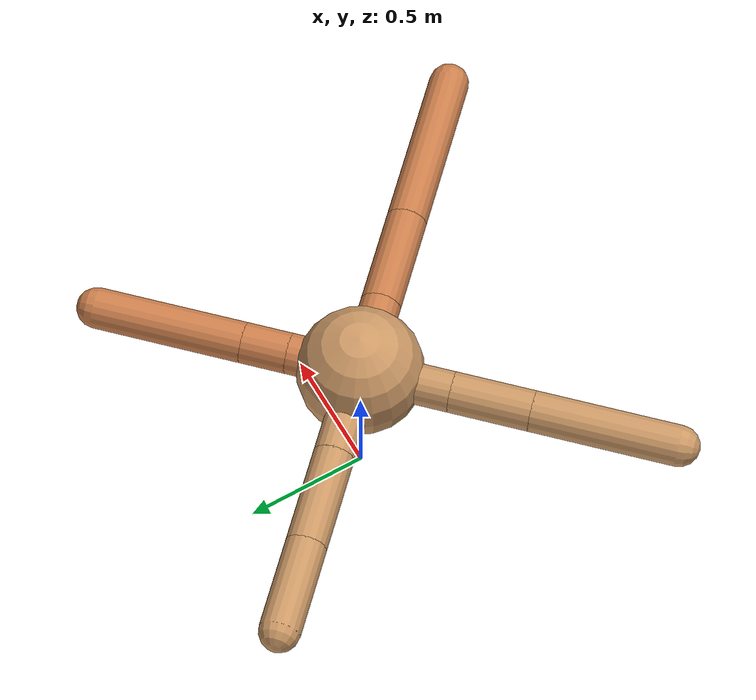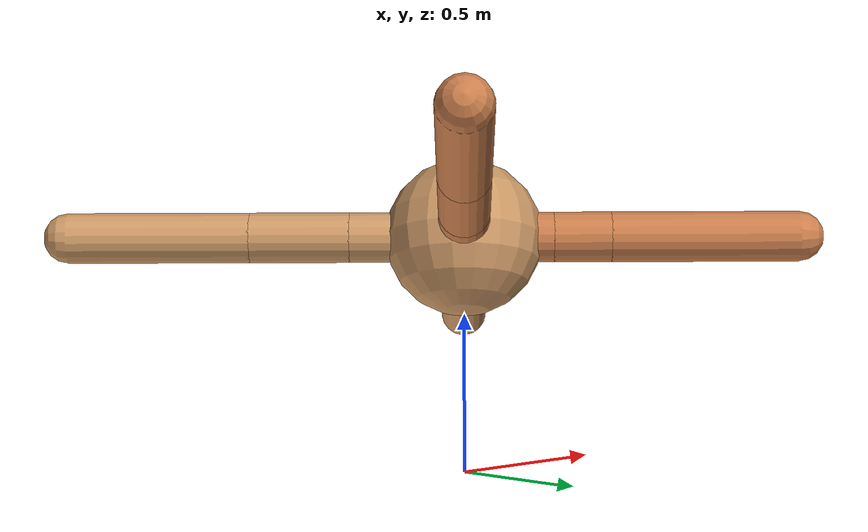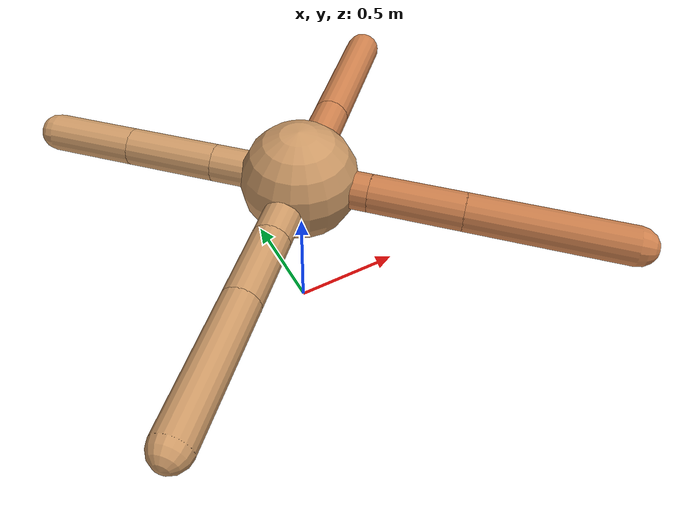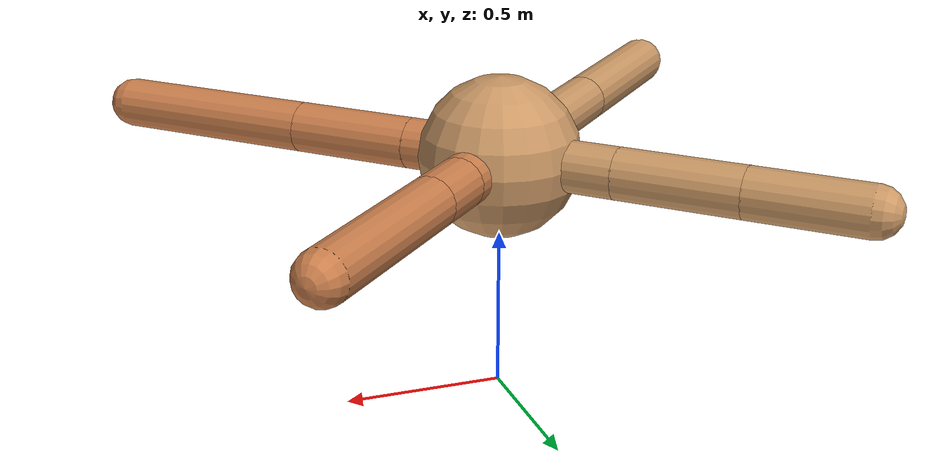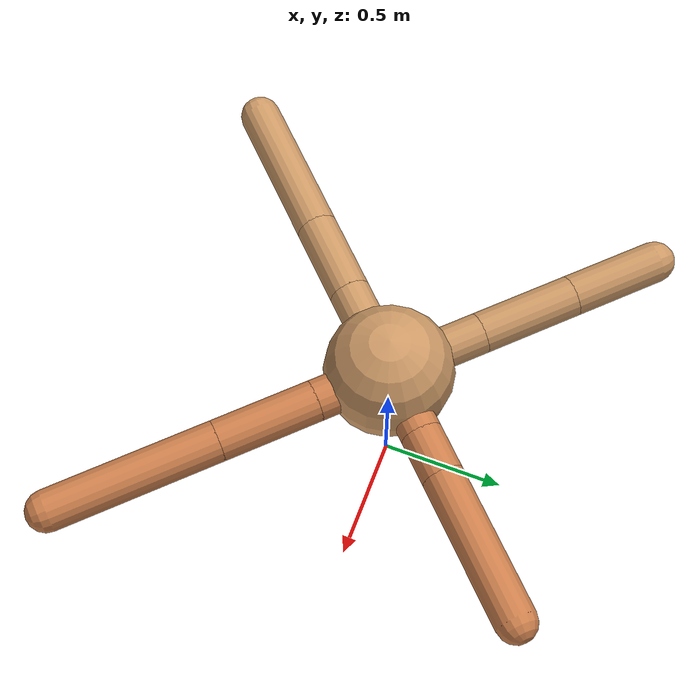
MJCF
<mujoco model="ant">
  <compiler angle="degree" coordinate="local" inertiafromgeom="true" />
  <option integrator="RK4" timestep="0.01" />
  <custom>
    <numeric data="0.0 0.0 0.55 1.0 0.0 0.0 0.0 0.0 1.0 0.0 -1.0 0.0 -1.0 0.0 1.0" name="init_qpos" />
  </custom>
  <default>
    <joint armature="1" damping="1" limited="true" />
    <geom conaffinity="0" condim="3" density="5.0" friction="1.5 0.1 0.1" margin="0.01" rgba="0.8 0.6 0.4 1" />
  </default>
  <worldbody>
    <body name="torso" pos="0 0 0.75">
      <geom name="torso_geom" pos="0 0 0" size="0.25" type="sphere" />

      <body name="front_left_leg" pos="0 0 0">
        <geom fromto="0.0 0.0 0.0 0.200891799315729 0.200891799315729 0.0" name="aux_1_geom" size="0.08" type="capsule" rgba=".8 .5 .3 1" />
        <body name="aux_1" pos="0.200891799315729 0.200891799315729 0.0">
          <joint axis="0 0 1" name="hip_1" pos="0.0 0.0 0.0" range="-40 40" type="hinge" />
          <geom fromto="0.0 0.0 0.0 0.12871895637135167 0.12871895637135167 0.0" name="left_leg_geom" size="0.08" type="capsule" rgba=".8 .5 .3 1" />
          <body pos="0.12871895637135167 0.12871895637135167 0.0" name="front_left_foot">
            <joint axis="-1 1 0" name="ankle_1" pos="0.0 0.0 0.0" range="30 100" type="hinge" />
            <geom fromto="0.0 0.0 0.0 0.41932422128845337 0.41932422128845337 0.0" name="left_ankle_geom" size="0.08" type="capsule" rgba=".8 .5 .3 1" />
          </body>
        </body>
      </body>
      <body name="front_right_leg" pos="0 0 0">
        <geom fromto="0.0 0.0 0.0 -0.2689307048607892 0.2689307048607892 0.0" name="aux_2_geom" size="0.08" type="capsule" />
        <body name="aux_2" pos="-0.2689307048607892 0.2689307048607892 0.0">
          <joint axis="0 0 1" name="hip_2" pos="0.0 0.0 0.0" range="-40 40" type="hinge" />
          <geom fromto="0.0 0.0 0.0 -0.274886135174168 0.274886135174168 0.0" name="right_leg_geom" size="0.08" type="capsule" />
          <body pos="-0.274886135174168 0.274886135174168 0.0" name="front_right_foot">
            <joint axis="1 1 0" name="ankle_2" pos="0.0 0.0 0.0" range="-100 -30" type="hinge" />
            <geom fromto="0.0 0.0 0.0 -0.25812037972006685 0.25812037972006685 0.0" name="right_ankle_geom" size="0.08" type="capsule" />
          </body>
        </body>
      </body>
      <body name="left_back_leg" pos="0 0 0">
        <geom fromto="0.0 0.0 0.0 -0.25649976230776167 -0.25649976230776167 0.0" name="aux_3_geom" size="0.08" type="capsule" />
        <body name="aux_3" pos="-0.25649976230776167 -0.25649976230776167 0.0">
          <joint axis="0 0 1" name="hip_3" pos="0.0 0.0 0.0" range="-40 40" type="hinge" />
          <geom fromto="0.0 0.0 0.0 -0.22422998246287237 -0.22422998246287237 0.0" name="back_leg_geom" size="0.08" type="capsule" />
          <body pos="-0.22422998246287237 -0.22422998246287237 0.0" name="left_back_foot">
            <joint axis="-1 1 0" name="ankle_3" pos="0.0 0.0 0.0" range="-100 -30" type="hinge" />
            <geom fromto="0.0 0.0 0.0 -0.407933606078828 -0.407933606078828 0.0" name="third_ankle_geom" size="0.08" type="capsule" />
          </body>
        </body>
      </body>
      <body name="right_back_leg" pos="0 0 0">
        <geom fromto="0.0 0.0 0.0 0.21370640660903828 -0.21370640660903828 0.0" name="aux_4_geom" size="0.08" type="capsule" rgba=".8 .5 .3 1" />
        <body name="aux_4" pos="0.21370640660903828 -0.21370640660903828 0.0">
          <joint axis="0 0 1" name="hip_4" pos="0.0 0.0 0.0" range="-40 40" type="hinge" />
          <geom fromto="0.0 0.0 0.0 0.27718826299020555 -0.27718826299020555 0.0" name="rightback_leg_geom" size="0.08" type="capsule" rgba=".8 .5 .3 1" />
          <body pos="0.27718826299020555 -0.27718826299020555 0.0" name="right_back_foot">
            <joint axis="1 1 0" name="ankle_4" pos="0.0 0.0 0.0" range="30 100" type="hinge" />
            <geom fromto="0.0 0.0 0.0 0.46772049554899775 -0.46772049554899775 0.0" name="fourth_ankle_geom" size="0.08" type="capsule" rgba=".8 .5 .3 1" />
          </body>
        </body>
      </body>
    </body>
  </worldbody>
  <actuator>
    <motor ctrllimited="true" ctrlrange="-1.0 1.0" joint="hip_4" gear="150" />
    <motor ctrllimited="true" ctrlrange="-1.0 1.0" joint="ankle_4" gear="150" />
    <motor ctrllimited="true" ctrlrange="-1.0 1.0" joint="hip_1" gear="150" />
    <motor ctrllimited="true" ctrlrange="-1.0 1.0" joint="ankle_1" gear="150" />
    <motor ctrllimited="true" ctrlrange="-1.0 1.0" joint="hip_2" gear="150" />
    <motor ctrllimited="true" ctrlrange="-1.0 1.0" joint="ankle_2" gear="150" />
    <motor ctrllimited="true" ctrlrange="-1.0 1.0" joint="hip_3" gear="150" />
    <motor ctrllimited="true" ctrlrange="-1.0 1.0" joint="ankle_3" gear="150" />
  </actuator>
</mujoco>
